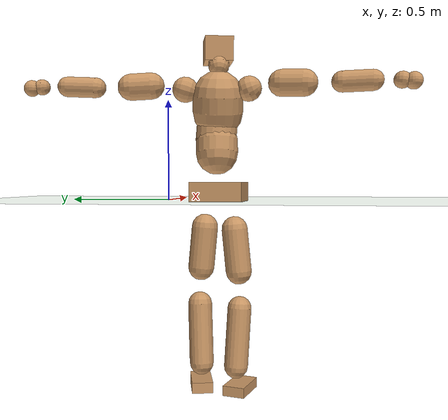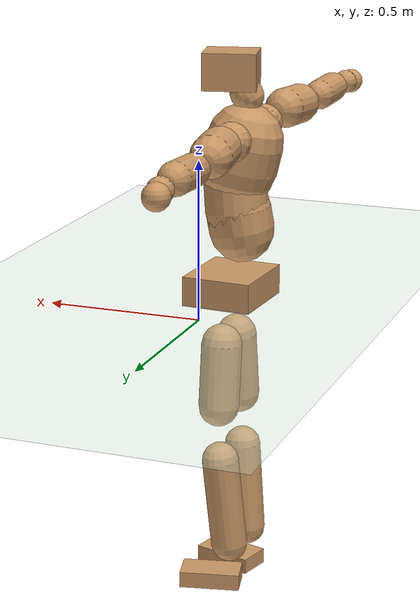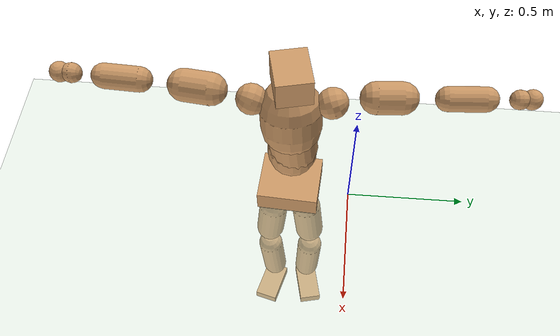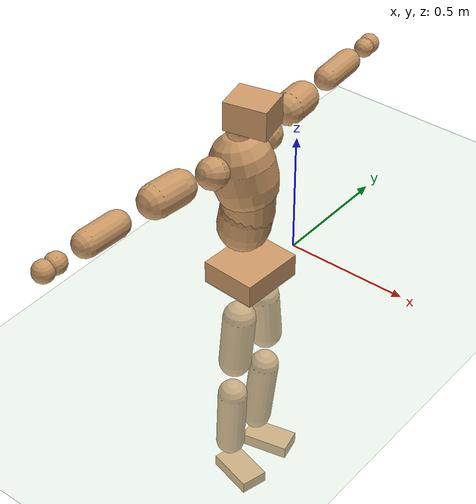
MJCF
<mujoco model="humanoid">
  <compiler coordinate="local" angle="radian"/>
  <default>
    <joint damping="0.0" armature="0.01" stiffness="0.0" limited="true"/>
    <geom conaffinity="1" condim="3" contype="7" margin="0.001" rgba="0.8 0.6 .4 1"/>
  </default>
  <asset>
    <texture type="skybox" builtin="gradient" rgb1=".4 .5 .6" rgb2="0 0 0" width="100" height="100"/>
    <texture builtin="flat" height="1278" mark="cross" markrgb="1 1 1" name="texgeom" random="0.01" rgb1="0.8 0.6 0.4" rgb2="0.8 0.6 0.4" type="cube" width="127"/>
    <texture builtin="checker" height="100" name="texplane" rgb1="0 0 0" rgb2="0.8 0.8 0.8" type="2d" width="100"/>
    <material name="MatPlane" reflectance="0.5" shininess="1" specular="1" texrepeat="60 60" texture="texplane"/>
    <material name="geom" texture="texgeom" texuniform="true"/>
  </asset>
  <worldbody>
    <light cutoff="100" diffuse="1 1 1" dir="-0 0 -1.3" directional="true" exponent="1" pos="0 0 1.3" specular=".1 .1 .1"/>
    <geom conaffinity="1" condim="3" name="floor" pos="0 0 0" rgba="0.8 0.9 0.8 1" size="100 100 .2" type="plane" material="MatPlane"/>
    <body name="Pelvis" pos="-0.0013 -0.2585 0.0503">
      <freejoint name="Pelvis"/>
      <geom type="box" contype="1" conaffinity="1" density="5359.375101" pos="-0.0095 0.0006 -0.0077" size="0.113 0.1294 0.0477" quat="0.9996 0.0000 0.0000 -0.0295" name="Pelvis"/>
      <body name="L_Hip" pos="-0.0055 0.0647 -0.0893">
        <joint name="L_Hip_x" type="hinge" pos="0 0 0" axis="1 0 0" stiffness="1600" damping="160" armature="0.02" range="-180.0000 180.0000"/>
        <joint name="L_Hip_y" type="hinge" pos="0 0 0" axis="0 1 0" stiffness="1600" damping="160" armature="0.02" range="-180.0000 180.0000"/>
        <joint name="L_Hip_z" type="hinge" pos="0 0 0" axis="0 0 1" stiffness="1600" damping="160" armature="0.02" range="-180.0000 180.0000"/>
        <geom type="capsule" contype="1" conaffinity="1" density="2040.816327" size="0.0651" fromto="0.0010 0.0088 -0.0947 0.0033 0.0279 -0.2995" name="L_Hip"/>
        <body name="L_Knee" pos="0.0043 0.0368 -0.3942">
          <joint name="L_Knee_x" type="hinge" pos="0 0 0" axis="1 0 0" stiffness="1600" damping="160" armature="0.02" range="-180.0000 180.0000"/>
          <joint name="L_Knee_y" type="hinge" pos="0 0 0" axis="0 1 0" stiffness="1600" damping="160" armature="0.02" range="-180.0000 180.0000"/>
          <joint name="L_Knee_z" type="hinge" pos="0 0 0" axis="0 0 1" stiffness="1600" damping="160" armature="0.02" range="-180.0000 180.0000"/>
          <geom type="capsule" contype="1" conaffinity="1" density="1234.567901" size="0.0597" fromto="-0.0084 -0.0038 -0.0892 -0.0362 -0.0164 -0.3841" name="L_Knee"/>
          <body name="L_Ankle" pos="-0.0446 -0.0202 -0.4733">
            <joint name="L_Ankle_x" type="hinge" pos="0 0 0" axis="1 0 0" stiffness="1600" damping="160" armature="0.02" range="-180.0000 180.0000"/>
            <joint name="L_Ankle_y" type="hinge" pos="0 0 0" axis="0 1 0" stiffness="1600" damping="160" armature="0.02" range="-180.0000 180.0000"/>
            <joint name="L_Ankle_z" type="hinge" pos="0 0 0" axis="0 0 1" stiffness="1600" damping="160" armature="0.02" range="-180.0000 180.0000"/>
            <geom type="box" contype="1" conaffinity="1" density="1000.000036" pos="0.0679 0.0155 -0.0319" size="0.0981 0.0524 0.0267" quat="0.9937 0.0000 0.0000 0.1121" name="L_Ankle"/>
            <body name="L_Toe" pos="0.1359 0.0311 -0.0638">
              <joint name="L_Toe_x" type="hinge" pos="0 0 0" axis="1 0 0" stiffness="1000" damping="100" armature="0.02" range="-180.0000 180.0000"/>
              <joint name="L_Toe_y" type="hinge" pos="0 0 0" axis="0 1 0" stiffness="1000" damping="100" armature="0.02" range="-180.0000 180.0000"/>
              <joint name="L_Toe_z" type="hinge" pos="0 0 0" axis="0 0 1" stiffness="1000" damping="100" armature="0.02" range="-180.0000 180.0000"/>
              <geom type="box" contype="1" conaffinity="1" density="9069034.491429" pos="0.0000 0.0000 0.0324" size="0.0011 0.0026 0.0014" quat="0.9931 0.0000 0.0000 0.1174" name="L_Toe"/>
            </body>
          </body>
        </body>
      </body>
      <body name="R_Hip" pos="0.0015 -0.0667 -0.1005">
        <joint name="R_Hip_x" type="hinge" pos="0 0 0" axis="1 0 0" stiffness="1600" damping="160" armature="0.02" range="-180.0000 180.0000"/>
        <joint name="R_Hip_y" type="hinge" pos="0 0 0" axis="0 1 0" stiffness="1600" damping="160" armature="0.02" range="-180.0000 180.0000"/>
        <joint name="R_Hip_z" type="hinge" pos="0 0 0" axis="0 0 1" stiffness="1600" damping="160" armature="0.02" range="-180.0000 180.0000"/>
        <geom type="capsule" contype="1" conaffinity="1" density="2040.816327" size="0.0649" fromto="-0.0019 -0.0096 -0.0944 -0.0061 -0.0313 -0.3063" name="R_Hip"/>
        <body name="R_Knee" pos="-0.008 -0.041 -0.4007">
          <joint name="R_Knee_x" type="hinge" pos="0 0 0" axis="1 0 0" stiffness="1600" damping="160" armature="0.02" range="-180.0000 180.0000"/>
          <joint name="R_Knee_y" type="hinge" pos="0 0 0" axis="0 1 0" stiffness="1600" damping="160" armature="0.02" range="-180.0000 180.0000"/>
          <joint name="R_Knee_z" type="hinge" pos="0 0 0" axis="0 0 1" stiffness="1600" damping="160" armature="0.02" range="-180.0000 180.0000"/>
          <geom type="capsule" contype="1" conaffinity="1" density="1234.567901" size="0.0593" fromto="-0.0074 0.0045 -0.0888 -0.0318 0.0191 -0.3796" name="R_Knee"/>
          <body name="R_Ankle" pos="-0.0392 0.0235 -0.4684">
            <joint name="R_Ankle_x" type="hinge" pos="0 0 0" axis="1 0 0" stiffness="1600" damping="160" armature="0.02" range="-180.0000 180.0000"/>
            <joint name="R_Ankle_y" type="hinge" pos="0 0 0" axis="0 1 0" stiffness="1600" damping="160" armature="0.02" range="-180.0000 180.0000"/>
            <joint name="R_Ankle_z" type="hinge" pos="0 0 0" axis="0 0 1" stiffness="1600" damping="160" armature="0.02" range="-180.0000 180.0000"/>
            <geom type="box" contype="1" conaffinity="1" density="1000.000024" pos="0.0713 -0.0190 -0.0340" size="0.0981 0.0556 0.0253" quat="0.9915 0.0000 0.0000 -0.1298" name="R_Ankle"/>
            <body name="R_Toe" pos="0.1427 -0.038 -0.0681">
              <joint name="R_Toe_x" type="hinge" pos="0 0 0" axis="1 0 0" stiffness="1000" damping="100" armature="0.02" range="-180.0000 180.0000"/>
              <joint name="R_Toe_y" type="hinge" pos="0 0 0" axis="0 1 0" stiffness="1000" damping="100" armature="0.02" range="-180.0000 180.0000"/>
              <joint name="R_Toe_z" type="hinge" pos="0 0 0" axis="0 0 1" stiffness="1000" damping="100" armature="0.02" range="-180.0000 180.0000"/>
              <geom type="box" contype="1" conaffinity="1" density="8298192.49721" pos="0.0000 0.0000 0.0350" size="0.0013 0.0027 0.0013" quat="0.9926 0.0000 0.0000 -0.1217" name="R_Toe"/>
            </body>
          </body>
        </body>
      </body>
      <body name="Torso" pos="-0.0527 0.0054 0.1436">
        <joint name="Torso_x" type="hinge" pos="0 0 0" axis="1 0 0" stiffness="2000" damping="200" armature="0.02" range="-180.0000 180.0000"/>
        <joint name="Torso_y" type="hinge" pos="0 0 0" axis="0 1 0" stiffness="2000" damping="200" armature="0.02" range="-180.0000 180.0000"/>
        <joint name="Torso_z" type="hinge" pos="0 0 0" axis="0 0 1" stiffness="2000" damping="200" armature="0.02" range="-180.0000 180.0000"/>
        <geom type="capsule" contype="1" conaffinity="1" density="2040.816327" size="0.1032" fromto="0.0179 0.0038 0.1016 0.0066 0.0014 0.0373" name="Torso"/>
        <body name="Spine" pos="0.0245 0.0052 0.1389">
          <joint name="Spine_x" type="hinge" pos="0 0 0" axis="1 0 0" stiffness="2000" damping="200" armature="0.02" range="-180.0000 180.0000"/>
          <joint name="Spine_y" type="hinge" pos="0 0 0" axis="0 1 0" stiffness="2000" damping="200" armature="0.02" range="-180.0000 180.0000"/>
          <joint name="Spine_z" type="hinge" pos="0 0 0" axis="0 0 1" stiffness="2000" damping="200" armature="0.02" range="-180.0000 180.0000"/>
          <geom type="capsule" contype="1" conaffinity="1" density="2040.816327" size="0.1006" fromto="0.0090 -0.0069 0.1000 -0.0039 0.0030 -0.0436" name="Spine"/>
          <body name="Chest" pos="0.0051 -0.0039 0.0564">
            <joint name="Chest_x" type="hinge" pos="0 0 0" axis="1 0 0" stiffness="2000" damping="200" armature="0.02" range="-180.0000 180.0000"/>
            <joint name="Chest_y" type="hinge" pos="0 0 0" axis="0 1 0" stiffness="2000" damping="200" armature="0.02" range="-180.0000 180.0000"/>
            <joint name="Chest_z" type="hinge" pos="0 0 0" axis="0 0 1" stiffness="2000" damping="200" armature="0.02" range="-180.0000 180.0000"/>
            <geom type="capsule" contype="1" conaffinity="1" density="2040.816327" size="0.1232" fromto="-0.0276 -0.0061 0.1199 -0.0100 -0.0022 0.0433" name="Chest"/>
            <body name="Neck" pos="-0.0558 -0.0145 0.2324">
              <joint name="Neck_x" type="hinge" pos="0 0 0" axis="1 0 0" stiffness="1000" damping="100" armature="0.02" range="-180.0000 180.0000"/>
              <joint name="Neck_y" type="hinge" pos="0 0 0" axis="0 1 0" stiffness="1000" damping="100" armature="0.02" range="-180.0000 180.0000"/>
              <joint name="Neck_z" type="hinge" pos="0 0 0" axis="0 0 1" stiffness="1000" damping="100" armature="0.02" range="-180.0000 180.0000"/>
              <geom type="capsule" contype="1" conaffinity="1" density="1000" size="0.0507" fromto="0.0267 0.0052 0.0428 0.0198 0.0039 0.0317" name="Neck"/>
              <body name="Head" pos="0.0465 0.0091 0.0745">
                <joint name="Head_x" type="hinge" pos="0 0 0" axis="1 0 0" stiffness="1000" damping="100" armature="0.02" range="-180.0000 180.0000"/>
                <joint name="Head_y" type="hinge" pos="0 0 0" axis="0 1 0" stiffness="1000" damping="100" armature="0.02" range="-180.0000 180.0000"/>
                <joint name="Head_z" type="hinge" pos="0 0 0" axis="0 0 1" stiffness="1000" damping="100" armature="0.02" range="-180.0000 180.0000"/>
                <geom type="box" contype="1" conaffinity="1" density="2250.000358" pos="0.0243 0.0056 0.0382" size="0.0837 0.0688 0.0579" quat="0.9936 0.0000 0.0000 0.1125" name="Head"/>
              </body>
            </body>
            <body name="L_Thorax" pos="-0.0275 0.0835 0.1293">
              <joint name="L_Thorax_x" type="hinge" pos="0 0 0" axis="1 0 0" stiffness="1000" damping="100" armature="0.02" range="-180.0000 180.0000"/>
              <joint name="L_Thorax_y" type="hinge" pos="0 0 0" axis="0 1 0" stiffness="1000" damping="100" armature="0.02" range="-180.0000 180.0000"/>
              <joint name="L_Thorax_z" type="hinge" pos="0 0 0" axis="0 0 1" stiffness="1000" damping="100" armature="0.02" range="-180.0000 180.0000"/>
              <geom type="capsule" contype="1" conaffinity="1" density="1000" size="0.0621" fromto="-0.0136 0.0692 0.0225 -0.0140 0.0711 0.0231" name="L_Thorax"/>
              <body name="L_Shoulder" pos="-0.0277 0.1403 0.0456">
                <joint name="L_Shoulder_x" type="hinge" pos="0 0 0" axis="1 0 0" stiffness="1000" damping="100" armature="0.02" range="-720.0000 720.0000"/>
                <joint name="L_Shoulder_y" type="hinge" pos="0 0 0" axis="0 1 0" stiffness="1000" damping="100" armature="0.02" range="-720.0000 720.0000"/>
                <joint name="L_Shoulder_z" type="hinge" pos="0 0 0" axis="0 0 1" stiffness="1000" damping="100" armature="0.02" range="-720.0000 720.0000"/>
                <geom type="capsule" contype="1" conaffinity="1" density="1000" size="0.0644" fromto="-0.0103 0.0937 -0.0049 -0.0212 0.1936 -0.0101" name="L_Shoulder"/>
                <body name="L_Elbow" pos="-0.0314 0.2873 -0.015">
                  <joint name="L_Elbow_x" type="hinge" pos="0 0 0" axis="1 0 0" stiffness="1000" damping="100" armature="0.02" range="-720.0000 720.0000"/>
                  <joint name="L_Elbow_y" type="hinge" pos="0 0 0" axis="0 1 0" stiffness="1000" damping="100" armature="0.02" range="-720.0000 720.0000"/>
                  <joint name="L_Elbow_z" type="hinge" pos="0 0 0" axis="0 0 1" stiffness="1000" damping="100" armature="0.02" range="-720.0000 720.0000"/>
                  <geom type="capsule" contype="1" conaffinity="1" density="1000" size="0.0494" fromto="-0.0017 0.0792 0.0040 -0.0049 0.2222 0.0111" name="L_Elbow"/>
                  <body name="L_Wrist" pos="-0.0066 0.3014 0.015">
                    <joint name="L_Wrist_x" type="hinge" pos="0 0 0" axis="1 0 0" stiffness="600" damping="60" armature="0.02" range="-180.0000 180.0000"/>
                    <joint name="L_Wrist_y" type="hinge" pos="0 0 0" axis="0 1 0" stiffness="600" damping="60" armature="0.02" range="-180.0000 180.0000"/>
                    <joint name="L_Wrist_z" type="hinge" pos="0 0 0" axis="0 0 1" stiffness="600" damping="60" armature="0.02" range="-180.0000 180.0000"/>
                    <geom type="capsule" contype="1" conaffinity="1" density="1000" size="0.0387" fromto="-0.0086 0.0478 -0.0055 -0.0089 0.0497 -0.0057" name="L_Wrist"/>
                    <body name="L_Hand" pos="-0.0175 0.0975 -0.0112">
                      <joint name="L_Hand_x" type="hinge" pos="0 0 0" axis="1 0 0" stiffness="600" damping="60" armature="0.02" range="-180.0000 180.0000"/>
                      <joint name="L_Hand_y" type="hinge" pos="0 0 0" axis="0 1 0" stiffness="600" damping="60" armature="0.02" range="-180.0000 180.0000"/>
                      <joint name="L_Hand_z" type="hinge" pos="0 0 0" axis="0 0 1" stiffness="600" damping="60" armature="0.02" range="-180.0000 180.0000"/>
                      <geom type="sphere" contype="1" conaffinity="1" density="1000" size="0.0399" pos="0.0000 0.0000 0.0000" name="L_Hand"/>
                    </body>
                  </body>
                </body>
              </body>
            </body>
            <body name="R_Thorax" pos="-0.0294 -0.094 0.1281">
              <joint name="R_Thorax_x" type="hinge" pos="0 0 0" axis="1 0 0" stiffness="1000" damping="100" armature="0.02" range="-180.0000 180.0000"/>
              <joint name="R_Thorax_y" type="hinge" pos="0 0 0" axis="0 1 0" stiffness="1000" damping="100" armature="0.02" range="-180.0000 180.0000"/>
              <joint name="R_Thorax_z" type="hinge" pos="0 0 0" axis="0 0 1" stiffness="1000" damping="100" armature="0.02" range="-180.0000 180.0000"/>
              <geom type="capsule" contype="1" conaffinity="1" density="1000" size="0.0615" fromto="-0.0067 -0.0629 0.0237 -0.0069 -0.0648 0.0244" name="R_Thorax"/>
              <body name="R_Shoulder" pos="-0.0136 -0.1277 0.0481">
                <joint name="R_Shoulder_x" type="hinge" pos="0 0 0" axis="1 0 0" stiffness="1000" damping="100" armature="0.02" range="-720.0000 720.0000"/>
                <joint name="R_Shoulder_y" type="hinge" pos="0 0 0" axis="0 1 0" stiffness="1000" damping="100" armature="0.02" range="-720.0000 720.0000"/>
                <joint name="R_Shoulder_z" type="hinge" pos="0 0 0" axis="0 0 1" stiffness="1000" damping="100" armature="0.02" range="-720.0000 720.0000"/>
                <geom type="capsule" contype="1" conaffinity="1" density="1000" size="0.0651" fromto="-0.0124 -0.0942 -0.0027 -0.0264 -0.2009 -0.0058" name="R_Shoulder"/>
                <body name="R_Elbow" pos="-0.0388 -0.2952 -0.0085">
                  <joint name="R_Elbow_x" type="hinge" pos="0 0 0" axis="1 0 0" stiffness="1000" damping="100" armature="0.02" range="-720.0000 720.0000"/>
                  <joint name="R_Elbow_y" type="hinge" pos="0 0 0" axis="0 1 0" stiffness="1000" damping="100" armature="0.02" range="-720.0000 720.0000"/>
                  <joint name="R_Elbow_z" type="hinge" pos="0 0 0" axis="0 0 1" stiffness="1000" damping="100" armature="0.02" range="-720.0000 720.0000"/>
                  <geom type="capsule" contype="1" conaffinity="1" density="1000" size="0.0503" fromto="-0.0022 -0.0803 0.0020 -0.0060 -0.2211 0.0055" name="R_Elbow"/>
                  <body name="R_Wrist" pos="-0.0082 -0.3014 0.0075">
                    <joint name="R_Wrist_x" type="hinge" pos="0 0 0" axis="1 0 0" stiffness="600" damping="60" armature="0.02" range="-180.0000 180.0000"/>
                    <joint name="R_Wrist_y" type="hinge" pos="0 0 0" axis="0 1 0" stiffness="600" damping="60" armature="0.02" range="-180.0000 180.0000"/>
                    <joint name="R_Wrist_z" type="hinge" pos="0 0 0" axis="0 0 1" stiffness="600" damping="60" armature="0.02" range="-180.0000 180.0000"/>
                    <geom type="capsule" contype="1" conaffinity="1" density="1000" size="0.0399" fromto="-0.0054 -0.0492 -0.0048 -0.0056 -0.0512 -0.0050" name="R_Wrist"/>
                    <body name="R_Hand" pos="-0.011 -0.1004 -0.0098">
                      <joint name="R_Hand_x" type="hinge" pos="0 0 0" axis="1 0 0" stiffness="600" damping="60" armature="0.02" range="-180.0000 180.0000"/>
                      <joint name="R_Hand_y" type="hinge" pos="0 0 0" axis="0 1 0" stiffness="600" damping="60" armature="0.02" range="-180.0000 180.0000"/>
                      <joint name="R_Hand_z" type="hinge" pos="0 0 0" axis="0 0 1" stiffness="600" damping="60" armature="0.02" range="-180.0000 180.0000"/>
                      <geom type="sphere" contype="1" conaffinity="1" density="1000" size="0.0409" pos="0.0000 0.0000 0.0000" name="R_Hand"/>
                    </body>
                  </body>
                </body>
              </body>
            </body>
          </body>
        </body>
      </body>
    </body>
  </worldbody>
  <actuator>
    <motor name="L_Hip_x" joint="L_Hip_x" gear="500"/>
    <motor name="L_Hip_y" joint="L_Hip_y" gear="500"/>
    <motor name="L_Hip_z" joint="L_Hip_z" gear="500"/>
    <motor name="L_Knee_x" joint="L_Knee_x" gear="500"/>
    <motor name="L_Knee_y" joint="L_Knee_y" gear="500"/>
    <motor name="L_Knee_z" joint="L_Knee_z" gear="500"/>
    <motor name="L_Ankle_x" joint="L_Ankle_x" gear="500"/>
    <motor name="L_Ankle_y" joint="L_Ankle_y" gear="500"/>
    <motor name="L_Ankle_z" joint="L_Ankle_z" gear="500"/>
    <motor name="L_Toe_x" joint="L_Toe_x" gear="500"/>
    <motor name="L_Toe_y" joint="L_Toe_y" gear="500"/>
    <motor name="L_Toe_z" joint="L_Toe_z" gear="500"/>
    <motor name="R_Hip_x" joint="R_Hip_x" gear="500"/>
    <motor name="R_Hip_y" joint="R_Hip_y" gear="500"/>
    <motor name="R_Hip_z" joint="R_Hip_z" gear="500"/>
    <motor name="R_Knee_x" joint="R_Knee_x" gear="500"/>
    <motor name="R_Knee_y" joint="R_Knee_y" gear="500"/>
    <motor name="R_Knee_z" joint="R_Knee_z" gear="500"/>
    <motor name="R_Ankle_x" joint="R_Ankle_x" gear="500"/>
    <motor name="R_Ankle_y" joint="R_Ankle_y" gear="500"/>
    <motor name="R_Ankle_z" joint="R_Ankle_z" gear="500"/>
    <motor name="R_Toe_x" joint="R_Toe_x" gear="500"/>
    <motor name="R_Toe_y" joint="R_Toe_y" gear="500"/>
    <motor name="R_Toe_z" joint="R_Toe_z" gear="500"/>
    <motor name="Torso_x" joint="Torso_x" gear="500"/>
    <motor name="Torso_y" joint="Torso_y" gear="500"/>
    <motor name="Torso_z" joint="Torso_z" gear="500"/>
    <motor name="Spine_x" joint="Spine_x" gear="500"/>
    <motor name="Spine_y" joint="Spine_y" gear="500"/>
    <motor name="Spine_z" joint="Spine_z" gear="500"/>
    <motor name="Chest_x" joint="Chest_x" gear="500"/>
    <motor name="Chest_y" joint="Chest_y" gear="500"/>
    <motor name="Chest_z" joint="Chest_z" gear="500"/>
    <motor name="Neck_x" joint="Neck_x" gear="500"/>
    <motor name="Neck_y" joint="Neck_y" gear="500"/>
    <motor name="Neck_z" joint="Neck_z" gear="500"/>
    <motor name="Head_x" joint="Head_x" gear="500"/>
    <motor name="Head_y" joint="Head_y" gear="500"/>
    <motor name="Head_z" joint="Head_z" gear="500"/>
    <motor name="L_Thorax_x" joint="L_Thorax_x" gear="500"/>
    <motor name="L_Thorax_y" joint="L_Thorax_y" gear="500"/>
    <motor name="L_Thorax_z" joint="L_Thorax_z" gear="500"/>
    <motor name="L_Shoulder_x" joint="L_Shoulder_x" gear="500"/>
    <motor name="L_Shoulder_y" joint="L_Shoulder_y" gear="500"/>
    <motor name="L_Shoulder_z" joint="L_Shoulder_z" gear="500"/>
    <motor name="L_Elbow_x" joint="L_Elbow_x" gear="500"/>
    <motor name="L_Elbow_y" joint="L_Elbow_y" gear="500"/>
    <motor name="L_Elbow_z" joint="L_Elbow_z" gear="500"/>
    <motor name="L_Wrist_x" joint="L_Wrist_x" gear="500"/>
    <motor name="L_Wrist_y" joint="L_Wrist_y" gear="500"/>
    <motor name="L_Wrist_z" joint="L_Wrist_z" gear="500"/>
    <motor name="L_Hand_x" joint="L_Hand_x" gear="500"/>
    <motor name="L_Hand_y" joint="L_Hand_y" gear="500"/>
    <motor name="L_Hand_z" joint="L_Hand_z" gear="500"/>
    <motor name="R_Thorax_x" joint="R_Thorax_x" gear="500"/>
    <motor name="R_Thorax_y" joint="R_Thorax_y" gear="500"/>
    <motor name="R_Thorax_z" joint="R_Thorax_z" gear="500"/>
    <motor name="R_Shoulder_x" joint="R_Shoulder_x" gear="500"/>
    <motor name="R_Shoulder_y" joint="R_Shoulder_y" gear="500"/>
    <motor name="R_Shoulder_z" joint="R_Shoulder_z" gear="500"/>
    <motor name="R_Elbow_x" joint="R_Elbow_x" gear="500"/>
    <motor name="R_Elbow_y" joint="R_Elbow_y" gear="500"/>
    <motor name="R_Elbow_z" joint="R_Elbow_z" gear="500"/>
    <motor name="R_Wrist_x" joint="R_Wrist_x" gear="500"/>
    <motor name="R_Wrist_y" joint="R_Wrist_y" gear="500"/>
    <motor name="R_Wrist_z" joint="R_Wrist_z" gear="500"/>
    <motor name="R_Hand_x" joint="R_Hand_x" gear="500"/>
    <motor name="R_Hand_y" joint="R_Hand_y" gear="500"/>
    <motor name="R_Hand_z" joint="R_Hand_z" gear="500"/>
  </actuator>
  <contact>
    <exclude body1="Torso" body2="Chest"/>
    <exclude body1="Head" body2="Chest"/>
    <exclude body1="R_Knee" body2="R_Toe"/>
    <exclude body1="R_Knee" body2="L_Ankle"/>
    <exclude body1="R_Knee" body2="L_Toe"/>
    <exclude body1="L_Knee" body2="L_Toe"/>
    <exclude body1="L_Knee" body2="R_Ankle"/>
    <exclude body1="L_Knee" body2="R_Toe"/>
    <exclude body1="L_Shoulder" body2="Chest"/>
    <exclude body1="R_Shoulder" body2="Chest"/>
  </contact>
  <sensor/>
  <size njmax="700" nconmax="700"/>
</mujoco>
